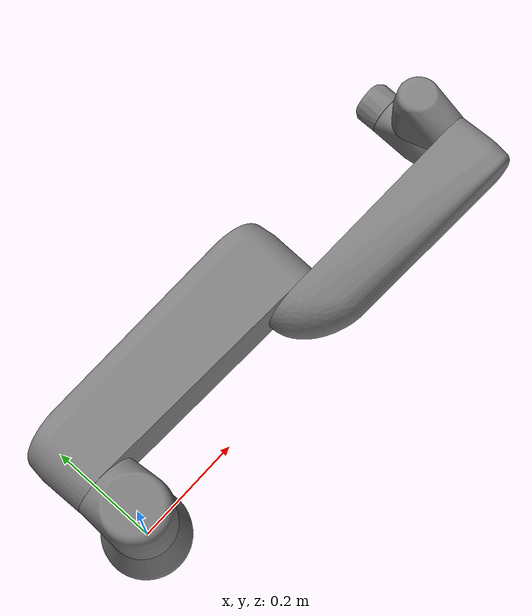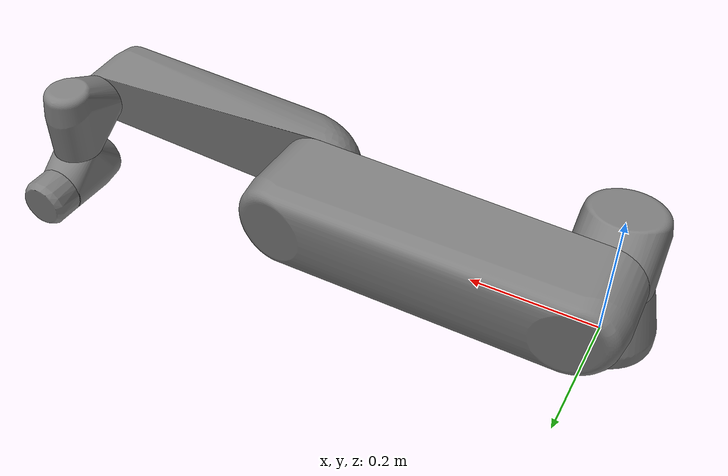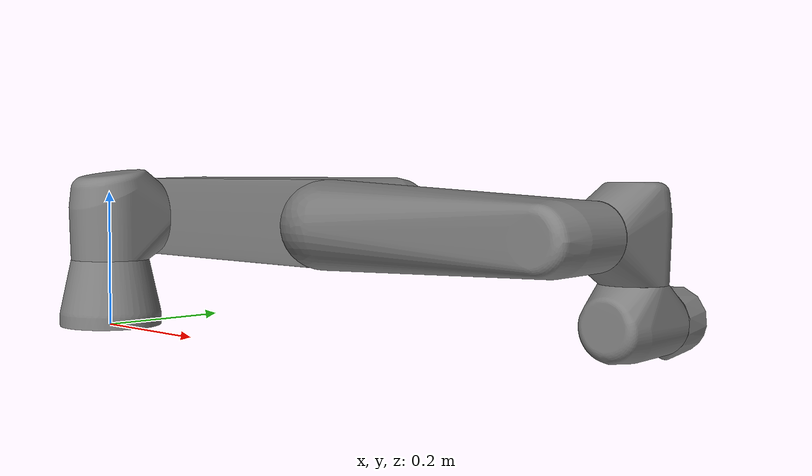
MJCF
<mujoco model="ur5e">
  <compiler angle="radian" meshdir="meshes/ur5e/collision/" autolimits="true" inertiafromgeom="false"/>

  <statistic meansize="0.165557" extent="1.04635" center="0.386531 0.0886669 0.162489"/>

	<option gravity="0 0 -9.81"/>

  <!-- ur5e properties -->
  <default>
    <default class="ur5e">
      <joint axis="0 1 0" range="-6.28319 6.28319" armature="0.1"/>
      <general gaintype="fixed" biastype="affine" ctrlrange="-6.2831 6.2831" gainprm="2000" biasprm="0 -2000 -400" forcerange="-150 150"/>
      <default class="size3">
        <default class="size3_limited">
          <joint range="-3.1415 3.1415"/>
          <general ctrlrange="-3.1415 3.1415"/>
        </default>
      </default>
      <default class="size1">
        <general gainprm="500" biasprm="0 -500 -100" forcerange="-28 28"/>
      </default>
    </default>
  </default>

  <size nstack="3000"/>

  <custom>
    <!-- brax custom params -->
    <numeric data="10000" name="constraint_stiffness"/>
    <numeric data="10000" name="constraint_limit_stiffness"/>
    <numeric data="10" name="constraint_ang_damping"/>
    <numeric data="50" name="constraint_vel_damping"/>
    <numeric data="0" name="ang_damping"/>
    <numeric data="0" name="spring_mass_scale"/>
		<numeric data="1" name="spring_inertia_scale"/>
		<numeric data="10" name="solver_maxls"/>
  </custom>

  <asset>
    <mesh name="base" file="base.obj"/>
    <mesh name="shoulder" file="shoulder.obj"/>
    <mesh name="upperarm" file="upperarm.obj"/>
    <mesh name="forearm" file="forearm.obj"/>
    <mesh name="wrist1" file="wrist1.obj"/>
    <mesh name="wrist2" file="wrist2.obj"/>
    <mesh name="wrist3" file="wrist3.obj"/>
  </asset>

  <worldbody>
    <geom quat="-1 0 0 0" type="mesh" mesh="base" contype="0" conaffinity="0" group="2"/>
    <body name="shoulder_link" pos="0 0 0.1625" quat="0 0 0 1">
      <inertial pos="0 0 0" mass="3.7" diaginertia="0.0102675 0.0102675 0.00666"/>
      <joint name="shoulder_pan_joint" pos="0 0 0" axis="0 0 1" range="-6.28319 6.28319"/>
      <geom quat="0 0 0 1" type="mesh" mesh="shoulder" contype="0" conaffinity="0" group="2"/>
      <body name="upper_arm_link" quat="0.707107 0.707107 0 0">
        <inertial pos="-0.2125 0 0.138" quat="0.707107 0 0.707107 0" mass="8.393" diaginertia="0.133886 0.133886 0.0151074"/>
        <joint name="shoulder_lift_joint" pos="0 0 0" axis="0 0 1" range="-6.28319 6.28319"/>
        <geom pos="0 0 0.138" quat="0.5 0.5 -0.5 -0.5" type="mesh" mesh="upperarm" contype="0" conaffinity="0" group="2"/>
        <body name="forearm_link" pos="-0.425 0 0">
          <inertial pos="-0.1961 0 0.007" quat="0.707107 0 0.707107 0" mass="2.275" diaginertia="0.0312094 0.0312094 0.004095"/>
          <joint name="elbow_joint" pos="0 0 0" axis="0 0 1" range="-3.14159 3.14159"/>
          <geom pos="0 0 0.007" quat="0.5 0.5 -0.5 -0.5" type="mesh" mesh="forearm" contype="0" conaffinity="0" group="2"/>
          <body name="wrist_1_link" pos="-0.3922 0 0.1333">
            <inertial pos="0 0 0" mass="1.219" diaginertia="0.0025599 0.0025599 0.0021942"/>
            <joint name="wrist_1_joint" pos="0 0 0" axis="0 0 1" range="-6.28319 6.28319"/>
            <geom pos="0 0 -0.127" quat="0.707107 0.707107 0 0" type="mesh" mesh="wrist1" contype="0" conaffinity="0" group="2"/>
            <body name="wrist_2_link" pos="0 -0.0997 -2.04488e-11" quat="0.707107 0.707107 0 0">
              <inertial pos="0 0 0" mass="1.219" diaginertia="0.0025599 0.0025599 0.0021942"/>
              <joint name="wrist_2_joint" pos="0 0 0" axis="0 0 1" range="-6.28319 6.28319"/>
              <geom pos="0 0 -0.0997" type="mesh" mesh="wrist2" contype="0" conaffinity="0" group="2"/>
              <body name="wrist_3_link" pos="0 0.0996 -2.04283e-11" quat="0.707107 -0.707107 0 0">
                <inertial pos="0 0 -0.0229" quat="0.5 0.5 -0.5 0.5" mass="0.1879" diaginertia="0.000132117 9.89041e-05 9.89041e-05"/>
                <joint name="wrist_3_joint" pos="0 0 0" axis="0 0 1" range="-6.28319 6.28319"/>
                <geom pos="0 0 -0.0989" quat="0.707107 0.707107 0 0" type="mesh" mesh="wrist3" contype="0" conaffinity="0" group="2"/>
              </body>
            </body>
          </body>
        </body>
      </body>
    </body>
  </worldbody>

  <actuator>
    <general class="size3" name="shoulder_pan" joint="shoulder_pan_joint"/>
    <general class="size3" name="shoulder_lift" joint="shoulder_lift_joint"/>
    <general class="size3_limited" name="elbow" joint="elbow_joint"/>
    <general class="size1" name="wrist_1" joint="wrist_1_joint"/>
    <general class="size1" name="wrist_2" joint="wrist_2_joint"/>
    <general class="size1" name="wrist_3" joint="wrist_3_joint"/>
  </actuator>

</mujoco>
